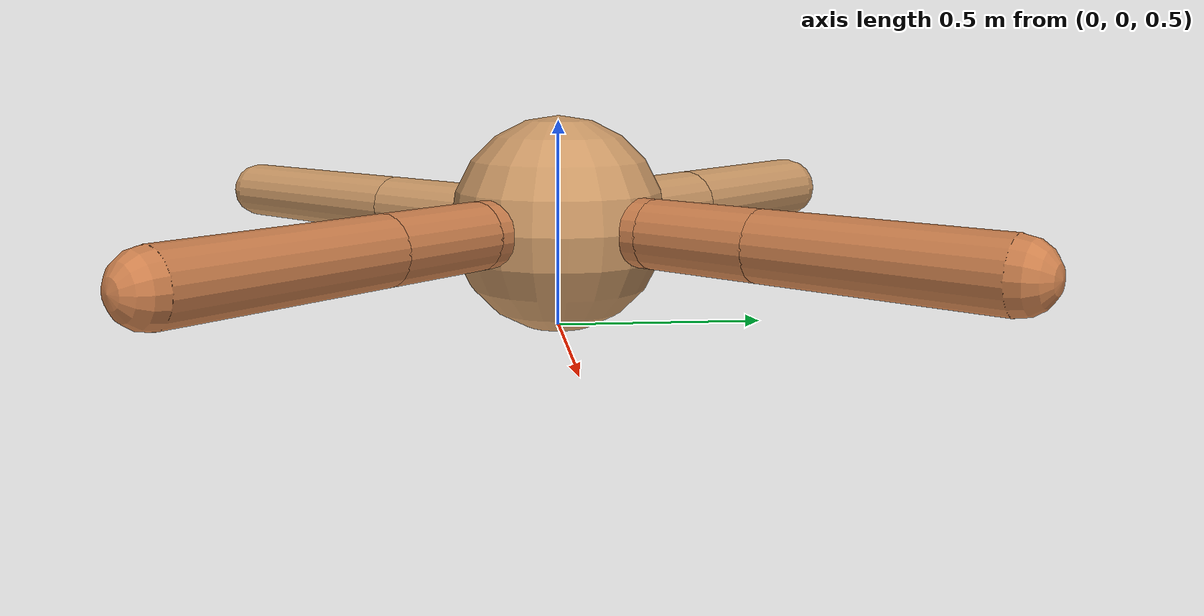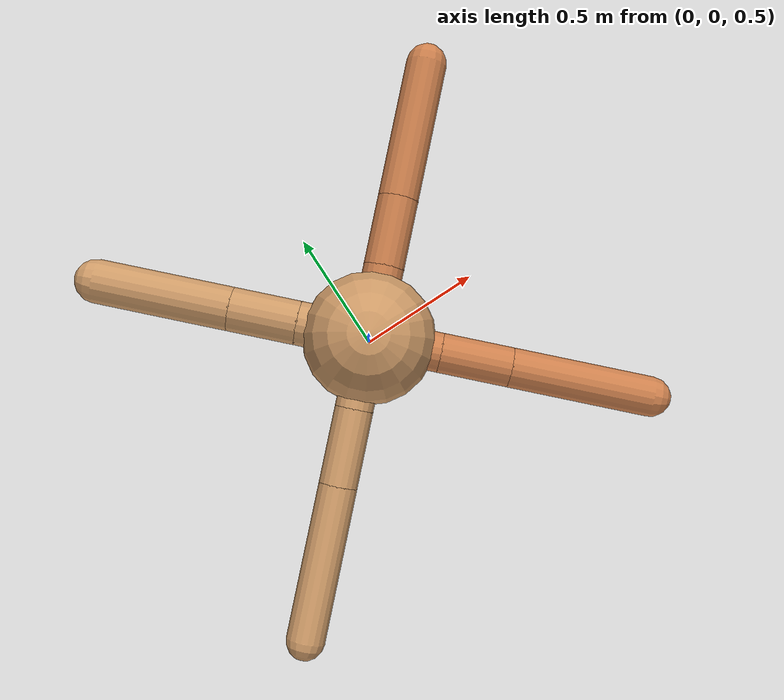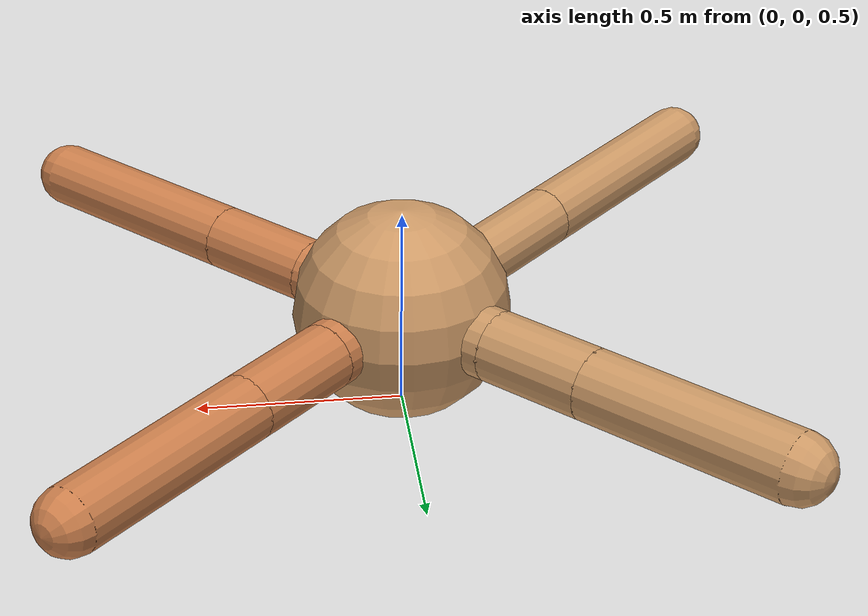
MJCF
<?xml version="1.0" ?>
<mujoco model="ant">

	<compiler angle="degree" coordinate="local" inertiafromgeom="true"/>

	<option integrator="RK4" timestep="0.01"/>

	<custom>

		<numeric data="0.0 0.0 0.55 1.0 0.0 0.0 0.0 0.0 1.0 0.0 -1.0 0.0 -1.0 0.0 1.0" name="init_qpos"/>

	</custom>

	<default>

		<joint armature="1" damping="1" limited="true"/>

		<geom conaffinity="0" condim="3" density="5.0" friction="1.5 0.1 0.1" margin="0.01" rgba="0.8 0.6 0.4 1"/>

	</default>

	<worldbody>

		<body name="torso" pos="0 0 0.75">

			<geom name="torso_geom" pos="0 0 0" size="0.26207150027639575" type="sphere"/>

			<!--joint armature="0" damping="0" limited="false" margin="0.01" name="root" pos="0 0 0" type="free"/-->

			<body name="front_left_leg" pos="0 0 0">

				<geom fromto="0 0 0 0.2 0.2 0" name="aux_1_geom" size="0.0805809719333744" type="capsule" rgba=".8 .5 .3 1"/>

				<body name="aux_1" pos="0.2 0.2 0">

					<joint axis="0 0 1" name="hip_1" pos="0.0 0.0 0.0" range="-40 40" type="hinge"/>

					<geom fromto="0 0 0 0.19510126046193688 0.19510126046193688 0" name="left_leg_geom" size="0.0805809719333744" type="capsule" rgba=".8 .5 .3 1"/>

					<body pos="0.19510126046193688 0.19510126046193688 0" name="front_left_foot">

						<joint axis="-1 1 0" name="ankle_1" pos="0.0 0.0 0.0" range="30 100" type="hinge"/>

						<geom fromto="0 0 0 0.39020252092387375 0.39020252092387375 0" name="left_ankle_geom" size="0.0805809719333744" type="capsule" rgba=".8 .5 .3 1"/>

					</body>

				</body>

			</body>

			<body name="front_right_leg" pos="0 0 0">

				<geom fromto="0 0 0 -0.2 0.2 0" name="aux_2_geom" size="0.08735590579691455" type="capsule"/>

				<body name="aux_2" pos="-0.2 0.2 0">

					<joint axis="0 0 1" name="hip_2" pos="0.0 0.0 0.0" range="-40 40" type="hinge"/>

					<geom fromto="0 0 0 -0.18929101183513658 0.18929101183513658 0" name="right_leg_geom" size="0.08735590579691455" type="capsule"/>

					<body pos="-0.18929101183513658 0.18929101183513658 0" name="front_right_foot">

						<joint axis="1 1 0" name="ankle_2" pos="0.0 0.0 0.0" range="-100 -30" type="hinge"/>

						<geom fromto="0 0 0 -0.37858202367027316 0.37858202367027316 0" name="right_ankle_geom" size="0.08735590579691455" type="capsule"/>

					</body>

				</body>

			</body>

			<body name="left_back_leg" pos="0 0 0">

				<geom fromto="0 0 0 -0.2 -0.2 0" name="aux_3_geom" size="0.076070381725121" type="capsule"/>

				<body name="aux_3" pos="-0.2 -0.2 0">

					<joint axis="0 0 1" name="hip_3" pos="0.0 0.0 0.0" range="-40 40" type="hinge"/>

					<geom fromto="0 0 0 -0.21291767566636818 -0.21291767566636818 0" name="back_leg_geom" size="0.076070381725121" type="capsule"/>

					<body pos="-0.21291767566636818 -0.21291767566636818 0" name="left_back_foot">

						<joint axis="-1 1 0" name="ankle_3" pos="0.0 0.0 0.0" range="-100 -30" type="hinge"/>

						<geom fromto="0 0 0 -0.42583535133273637 -0.42583535133273637 0" name="third_ankle_geom" size="0.076070381725121" type="capsule"/>

					</body>

				</body>

			</body>

			<body name="right_back_leg" pos="0 0 0">

				<geom fromto="0 0 0 0.2 -0.2 0" name="aux_4_geom" size="0.0783612546896831" type="capsule" rgba=".8 .5 .3 1"/>

				<body name="aux_4" pos="0.2 -0.2 0">

					<joint axis="0 0 1" name="hip_4" pos="0.0 0.0 0.0" range="-40 40" type="hinge"/>

					<geom fromto="0 0 0 0.1961412298726437 -0.1961412298726437 0" name="rightback_leg_geom" size="0.0783612546896831" type="capsule" rgba=".8 .5 .3 1"/>

					<body pos="0.1961412298726437 -0.1961412298726437 0" name="right_back_foot">

						<joint axis="1 1 0" name="ankle_4" pos="0.0 0.0 0.0" range="30 100" type="hinge"/>

						<geom fromto="0 0 0 0.3922824597452874 -0.3922824597452874 0" name="fourth_ankle_geom" size="0.0783612546896831" type="capsule" rgba=".8 .5 .3 1"/>

					</body>

				</body>

			</body>

		</body>

	</worldbody>

	<actuator>

		<motor ctrllimited="true" ctrlrange="-1.0 1.0" joint="hip_4" gear="150"/>

		<motor ctrllimited="true" ctrlrange="-1.0 1.0" joint="ankle_4" gear="150"/>

		<motor ctrllimited="true" ctrlrange="-1.0 1.0" joint="hip_1" gear="150"/>

		<motor ctrllimited="true" ctrlrange="-1.0 1.0" joint="ankle_1" gear="150"/>

		<motor ctrllimited="true" ctrlrange="-1.0 1.0" joint="hip_2" gear="150"/>

		<motor ctrllimited="true" ctrlrange="-1.0 1.0" joint="ankle_2" gear="150"/>

		<motor ctrllimited="true" ctrlrange="-1.0 1.0" joint="hip_3" gear="150"/>

		<motor ctrllimited="true" ctrlrange="-1.0 1.0" joint="ankle_3" gear="150"/>

	</actuator>

</mujoco>
